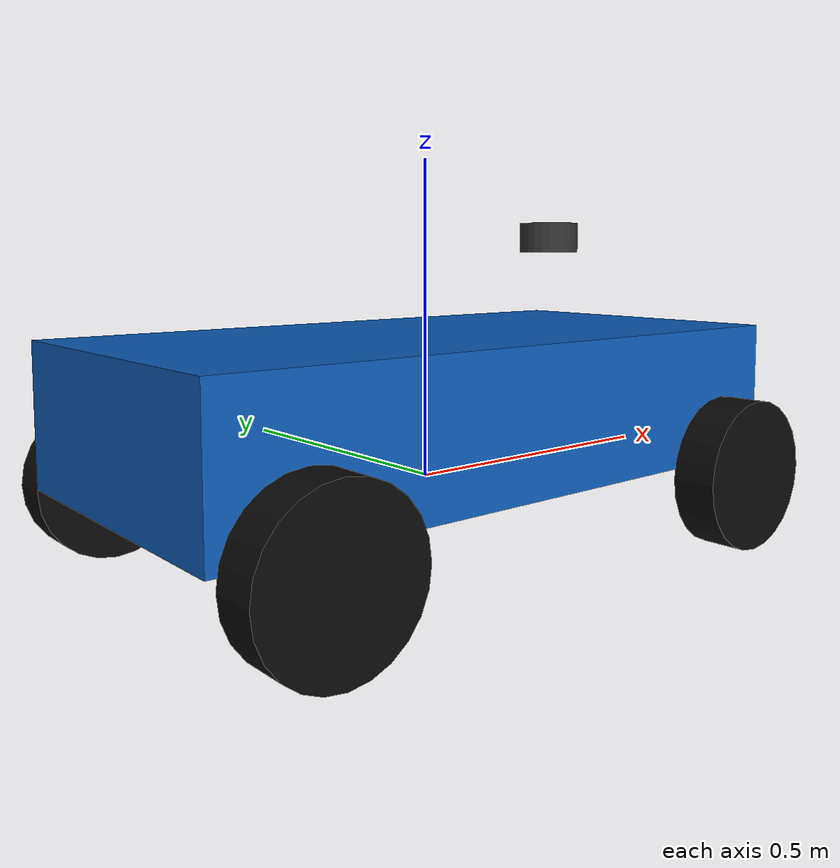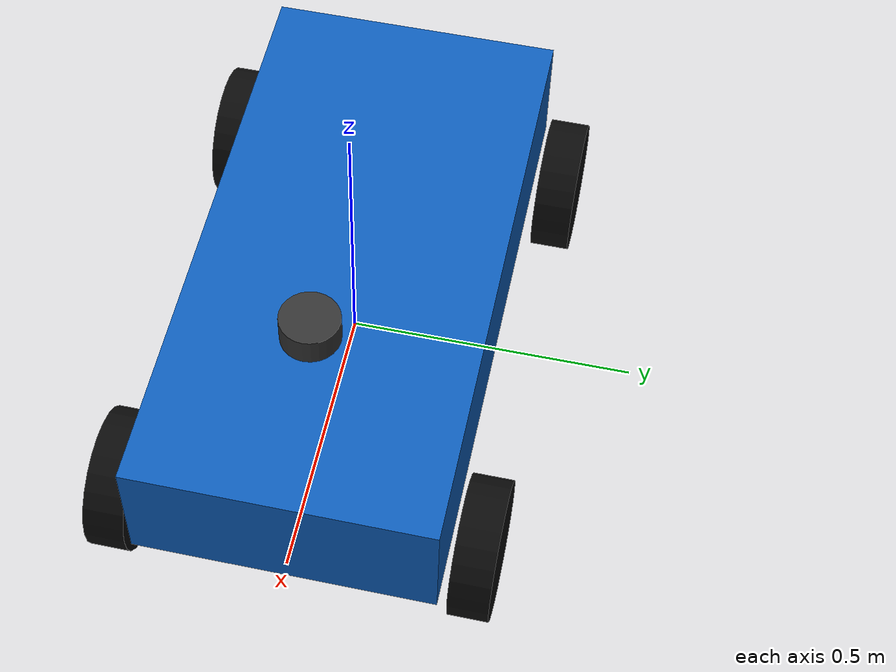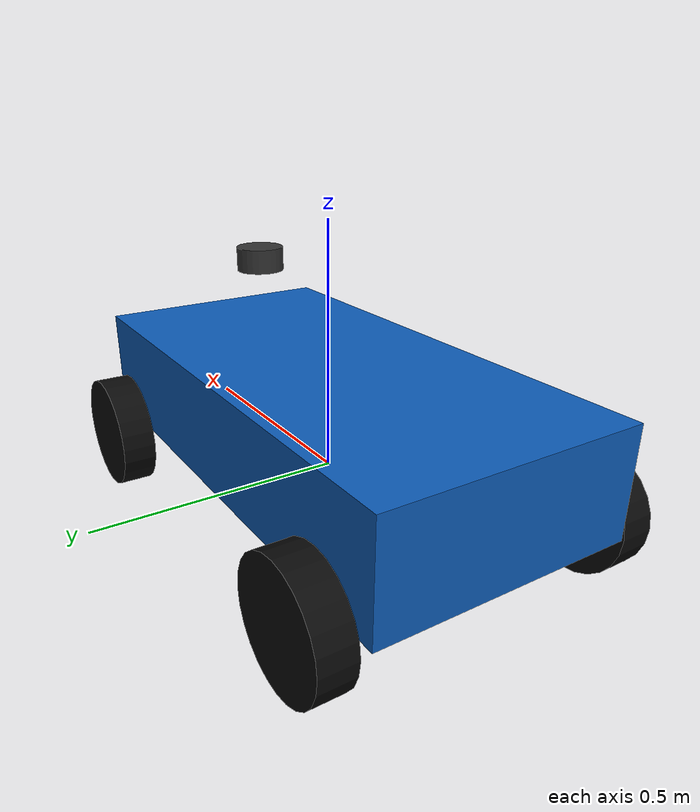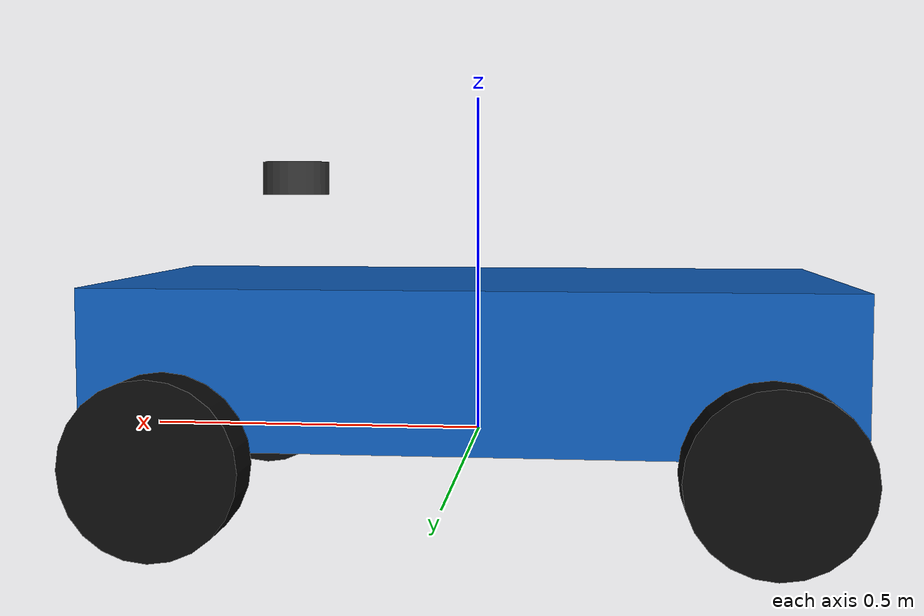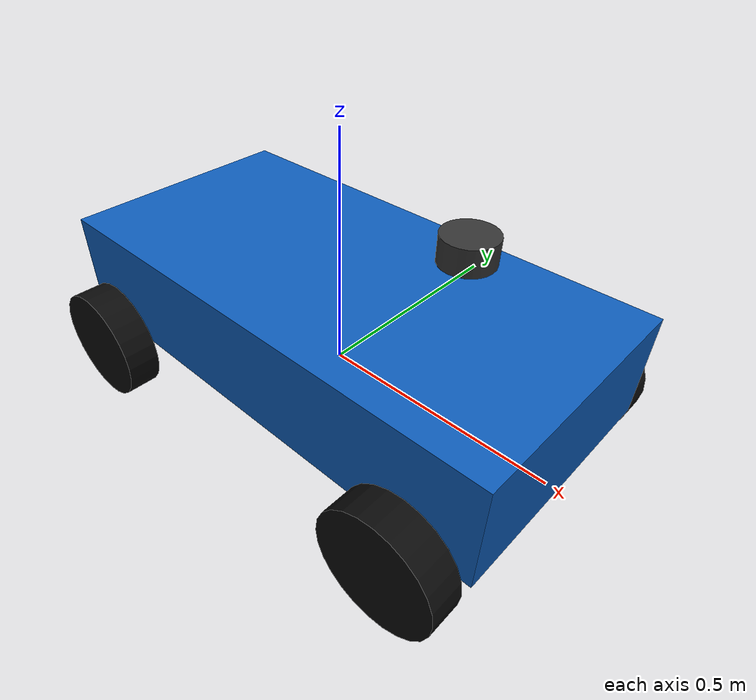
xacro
<?xml version="1.0"?>
<robot name="course_ackermann" xmlns:xacro="http://www.ros.org/wiki/xacro">

  <!-- ==================== Xacro Properties ==================== -->
  <!-- Dimensions matching .course-kit/v1/models/course_ackermann/model.sdf -->
  <xacro:property name="wheelbase" value="0.8"/>
  <xacro:property name="track_width" value="0.62"/>
  <xacro:property name="wheel_radius" value="0.12"/>
  <xacro:property name="wheel_length" value="0.07"/>

  <!-- Body parameters -->
  <xacro:property name="body_length" value="1.05"/>
  <xacro:property name="body_width" value="0.52"/>
  <xacro:property name="body_height" value="0.22"/>
  <xacro:property name="body_elevation" value="0.12"/>
  <xacro:property name="body_mass" value="12.0"/>

  <!-- Sensor positions relative to base_link -->
  <xacro:property name="sensor_x" value="0.28"/>
  <xacro:property name="sensor_y" value="0.0"/>
  <xacro:property name="sensor_z" value="0.38"/>

  <!-- Knuckle & Wheel masses -->
  <xacro:property name="knuckle_mass" value="0.2"/>
  <xacro:property name="wheel_mass" value="0.8"/>
  <xacro:property name="sensor_mass" value="0.033333333333"/>

  <!-- Materials -->
  <material name="body_blue">
    <color rgba="0.05 0.36 0.72 1.0"/>
  </material>

  <material name="wheel_dark">
    <color rgba="0.04 0.04 0.04 1.0"/>
  </material>

  <material name="sensor_grey">
    <color rgba="0.2 0.2 0.2 1.0"/>
  </material>

  <!-- ==================== base_link ==================== -->
  <link name="base_link">
    <inertial>
      <origin xyz="0 0 ${body_elevation}" rpy="0 0 0"/>
      <mass value="${body_mass}"/>
      <inertia ixx="0.55" ixy="0.0" ixz="0.0" iyy="1.10" iyz="0.0" izz="1.40"/>
    </inertial>
    <visual>
      <origin xyz="0 0 ${body_elevation}" rpy="0 0 0"/>
      <geometry>
        <box size="${body_length} ${body_width} ${body_height}"/>
      </geometry>
      <material name="body_blue"/>
    </visual>
    <collision>
      <origin xyz="0 0 ${body_elevation}" rpy="0 0 0"/>
      <geometry>
        <box size="${body_length} ${body_width} ${body_height}"/>
      </geometry>
    </collision>
  </link>

  <!-- ==================== Sensors ==================== -->
  <!-- Camera -->
  <link name="camera_link">
    <inertial>
      <origin xyz="0 0 0" rpy="0 0 0"/>
      <mass value="${sensor_mass}"/>
      <inertia ixx="0.000333" ixy="0.0" ixz="0.0" iyy="0.000333" iyz="0.0" izz="0.000333"/>
    </inertial>
    <visual>
      <origin xyz="0 0 0" rpy="0 0 0"/>
      <geometry>
        <box size="0.06 0.06 0.04"/>
      </geometry>
      <material name="sensor_grey"/>
    </visual>
    <collision>
      <origin xyz="0 0 0" rpy="0 0 0"/>
      <geometry>
        <box size="0.06 0.06 0.04"/>
      </geometry>
    </collision>
  </link>

  <joint name="camera_joint" type="fixed">
    <parent link="base_link"/>
    <child link="camera_link"/>
    <origin xyz="${sensor_x} ${sensor_y} ${sensor_z}" rpy="0 0 0"/>
  </joint>

  <!-- LiDAR -->
  <link name="lidar_link">
    <inertial>
      <origin xyz="0 0 0" rpy="0 0 0"/>
      <mass value="${sensor_mass}"/>
      <inertia ixx="0.000333" ixy="0.0" ixz="0.0" iyy="0.000333" iyz="0.0" izz="0.000333"/>
    </inertial>
    <visual>
      <origin xyz="0 0 0" rpy="0 0 0"/>
      <geometry>
        <cylinder radius="0.05" length="0.05"/>
      </geometry>
      <material name="sensor_grey"/>
    </visual>
    <collision>
      <origin xyz="0 0 0" rpy="0 0 0"/>
      <geometry>
        <cylinder radius="0.05" length="0.05"/>
      </geometry>
    </collision>
  </link>

  <joint name="lidar_joint" type="fixed">
    <parent link="base_link"/>
    <child link="lidar_link"/>
    <origin xyz="${sensor_x} ${sensor_y} ${sensor_z}" rpy="0 0 0"/>
  </joint>

  <!-- IMU -->
  <link name="imu_link">
    <inertial>
      <origin xyz="0 0 0" rpy="0 0 0"/>
      <mass value="${sensor_mass}"/>
      <inertia ixx="0.000333" ixy="0.0" ixz="0.0" iyy="0.000333" iyz="0.0" izz="0.000333"/>
    </inertial>
    <visual>
      <origin xyz="0 0 0" rpy="0 0 0"/>
      <geometry>
        <box size="0.04 0.04 0.02"/>
      </geometry>
      <material name="sensor_grey"/>
    </visual>
    <collision>
      <origin xyz="0 0 0" rpy="0 0 0"/>
      <geometry>
        <box size="0.04 0.04 0.02"/>
      </geometry>
    </collision>
  </link>

  <joint name="imu_joint" type="fixed">
    <parent link="base_link"/>
    <child link="imu_link"/>
    <origin xyz="${sensor_x} ${sensor_y} ${sensor_z}" rpy="0 0 0"/>
  </joint>

  <!-- ==================== Front Steering Knuckles ==================== -->
  <!-- Front Left Knuckle -->
  <link name="front_left_knuckle">
    <inertial>
      <origin xyz="0 0 0" rpy="0 0 0"/>
      <mass value="${knuckle_mass}"/>
      <inertia ixx="0.001" ixy="0.0" ixz="0.0" iyy="0.001" iyz="0.0" izz="0.001"/>
    </inertial>
  </link>

  <joint name="front_left_steering_joint" type="revolute">
    <parent link="base_link"/>
    <child link="front_left_knuckle"/>
    <origin xyz="${wheelbase / 2.0} ${track_width / 2.0} 0" rpy="0 0 0"/>
    <axis xyz="0 0 1"/>
    <limit lower="-0.55" upper="0.55" effort="25.0" velocity="1.0"/>
  </joint>

  <!-- Front Right Knuckle -->
  <link name="front_right_knuckle">
    <inertial>
      <origin xyz="0 0 0" rpy="0 0 0"/>
      <mass value="${knuckle_mass}"/>
      <inertia ixx="0.001" ixy="0.0" ixz="0.0" iyy="0.001" iyz="0.0" izz="0.001"/>
    </inertial>
  </link>

  <joint name="front_right_steering_joint" type="revolute">
    <parent link="base_link"/>
    <child link="front_right_knuckle"/>
    <origin xyz="${wheelbase / 2.0} -${track_width / 2.0} 0" rpy="0 0 0"/>
    <axis xyz="0 0 1"/>
    <limit lower="-0.55" upper="0.55" effort="25.0" velocity="1.0"/>
  </joint>

  <!-- ==================== Wheels Macro ==================== -->
  <xacro:macro name="wheel" params="prefix">
    <link name="${prefix}_wheel">
      <inertial>
        <origin xyz="0 0 0" rpy="1.57079632679 0 0"/>
        <mass value="${wheel_mass}"/>
        <inertia ixx="0.006" ixy="0.0" ixz="0.0" iyy="0.003" iyz="0.0" izz="0.006"/>
      </inertial>
      <visual>
        <origin xyz="0 0 0" rpy="1.57079632679 0 0"/>
        <geometry>
          <cylinder radius="${wheel_radius}" length="${wheel_length}"/>
        </geometry>
        <material name="wheel_dark"/>
      </visual>
      <collision>
        <origin xyz="0 0 0" rpy="1.57079632679 0 0"/>
        <geometry>
          <cylinder radius="${wheel_radius}" length="${wheel_length}"/>
        </geometry>
      </collision>
    </link>
  </xacro:macro>

  <!-- Front Wheels (attached to knuckles) -->
  <xacro:wheel prefix="front_left"/>
  <joint name="front_left_wheel_joint" type="continuous">
    <parent link="front_left_knuckle"/>
    <child link="front_left_wheel"/>
    <origin xyz="0 0 0" rpy="0 0 0"/>
    <axis xyz="0 1 0"/>
  </joint>

  <xacro:wheel prefix="front_right"/>
  <joint name="front_right_wheel_joint" type="continuous">
    <parent link="front_right_knuckle"/>
    <child link="front_right_wheel"/>
    <origin xyz="0 0 0" rpy="0 0 0"/>
    <axis xyz="0 1 0"/>
  </joint>

  <!-- Rear Wheels (attached directly to base_link) -->
  <xacro:wheel prefix="rear_left"/>
  <joint name="rear_left_wheel_joint" type="continuous">
    <parent link="base_link"/>
    <child link="rear_left_wheel"/>
    <origin xyz="-${wheelbase / 2.0} ${track_width / 2.0} 0" rpy="0 0 0"/>
    <axis xyz="0 1 0"/>
  </joint>

  <xacro:wheel prefix="rear_right"/>
  <joint name="rear_right_wheel_joint" type="continuous">
    <parent link="base_link"/>
    <child link="rear_right_wheel"/>
    <origin xyz="-${wheelbase / 2.0} -${track_width / 2.0} 0" rpy="0 0 0"/>
    <axis xyz="0 1 0"/>
  </joint>

</robot>
